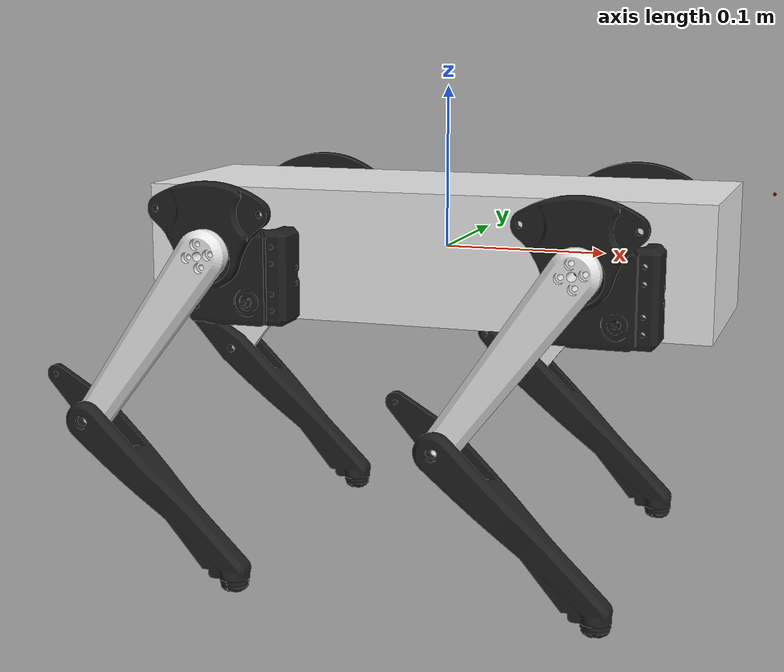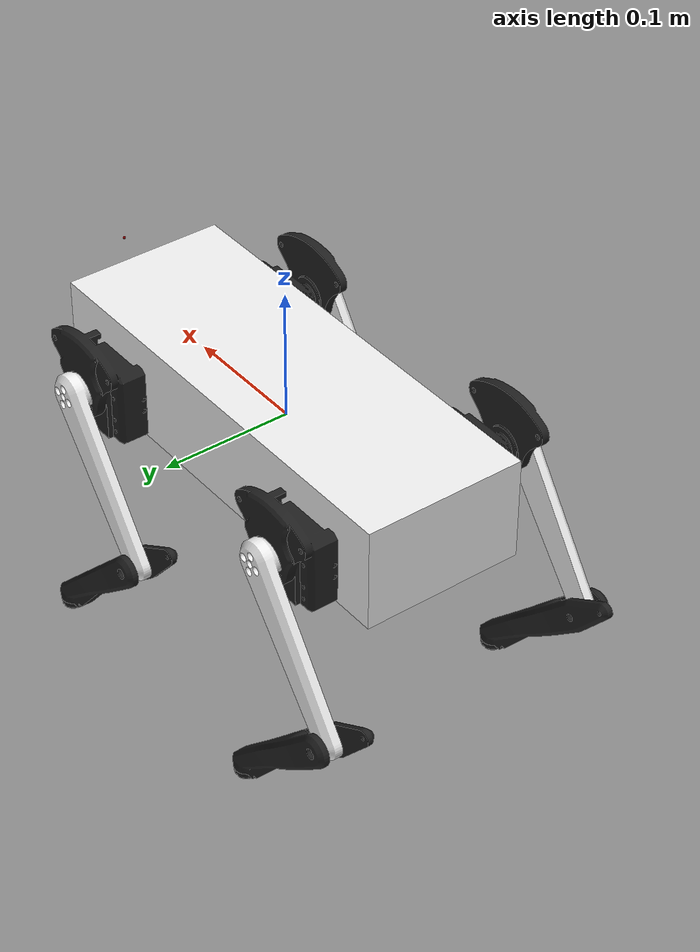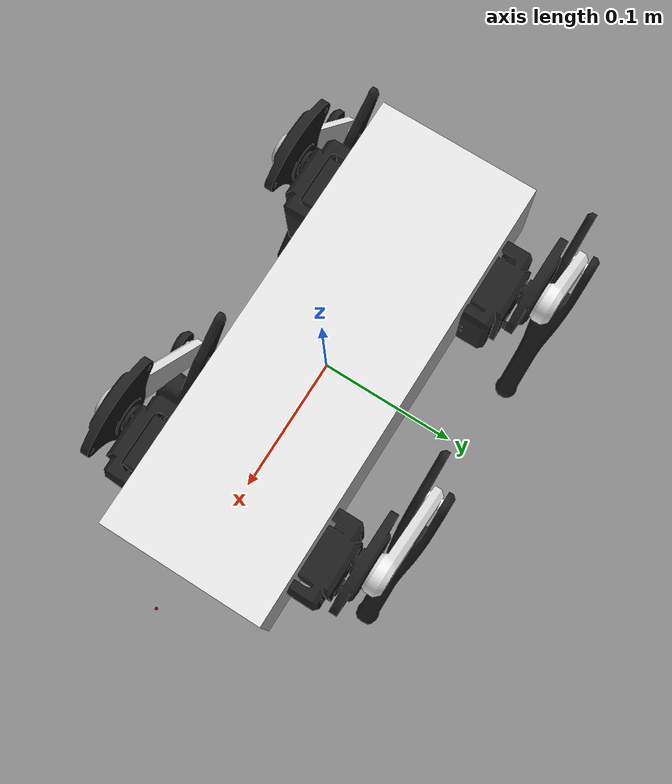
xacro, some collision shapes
<?xml version="1.0"?>

<robot name="jax" xmlns:xacro="http://www.ros.org/wiki/xacro">

  <xacro:arg name="DEBUG" default="false"/>
  <xacro:arg name="robot_controllers" default="$(find jax_locomotion)/config/ros_control/ros_control.yaml"/>

  <xacro:include filename="$(find jax_description)/urdf/const.xacro"/>
  <xacro:include filename="$(find jax_description)/urdf/materials.xacro"/>
  <xacro:include filename="$(find jax_description)/urdf/leg.xacro"/>
  <xacro:include filename="$(find jax_description)/urdf/jax_gazebo.xacro"/>

  <xacro:jax_gazebo robot_controllers="$(arg robot_controllers)"/>

  <xacro:if value="$(arg DEBUG)">
    <link name="world"/>
    <joint name="base_static_joint" type="fixed">
      <origin xyz="0 0 0" rpy="0 0 0"/>
      <parent link="world"/>
      <child link="base_link"/>
    </joint>
  </xacro:if>

  <link name="base_link">
    <visual>
      <origin xyz="0 0 0" rpy="0 0 0"/>
      <geometry>
        <box size="0.001 0.001 0.001"/>
      </geometry>
        <material name="white"/>
    </visual>
  </link>

  <joint name="floating_base" type="fixed">
    <origin xyz="0 0 0" rpy="0 0 0"/>
    <parent link="base_link"/>
    <child link="trunk"/>
  </joint>

  <link name="trunk">
    <visual>
      <origin xyz="0 0 -0.02" rpy="0 0 0"/>
      <geometry>
        <mesh filename="file://$(find jax_description)/meshes/base_link.stl"
              scale="0.001 0.001 0.001"/>
      </geometry>
        <material name="white"/>
    </visual>

    <collision>
      <origin xyz="0 0 0" rpy="0 0 0"/>
      <geometry>
        <box size="${trunk_length} ${trunk_width} ${trunk_height}"/>
      </geometry>
    </collision>

    <inertial>
      <origin xyz="${trunk_com_x} ${trunk_com_y} ${trunk_com_z}" rpy="0 0 0"/>
      <mass value="${trunk_mass}"/>
      <inertia
        ixx="${trunk_ixx}" ixy="${trunk_ixy}" ixz="${trunk_ixz}"
        iyy="${trunk_iyy}" iyz="${trunk_iyz}" izz="${trunk_izz}"/>
    </inertial>
  </link>

  <joint name="imu_joint" type="fixed">
    <parent link="trunk"/>
    <child link="imu_link"/>
    <origin xyz="0 0 0" rpy="0 0 0"/>
  </joint>

  <link name="imu_link">
    <inertial>
      <mass value="0.001"/>
      <origin xyz="0 0 0" rpy="0 0 0"/>
      <inertia ixx="0.0001" ixy="0" ixz="0" iyy="0.0001" iyz="0" izz="0.0001"/>
    </inertial>
    <visual>
      <origin xyz="0 0 0" rpy="0 0 0"/>
      <geometry>
        <box size="0.001 0.001 0.001"/>
      </geometry>
    </visual>
    <collision>
      <origin xyz="0 0 0" rpy="0 0 0"/>
      <geometry>
        <box size="0.001 0.001 0.001"/>
      </geometry>
    </collision>
  </link>

  <joint name="camera_joint" type="fixed">
    <parent link="trunk"/>
    <child link="camera_link"/>
    <origin xyz="0.20 0 0.04" rpy="0 0 0"/>
  </joint>

  <link name="camera_link">
    <inertial>
      <mass value="0.001"/>
      <origin xyz="0 0 0" rpy="0 0 0"/>
      <inertia ixx="0.0001" ixy="0" ixz="0" iyy="0.0001" iyz="0" izz="0.0001"/>
    </inertial>
    <visual>
      <origin xyz="0 0 0" rpy="0 0 0"/>
      <geometry>
        <sphere radius="0.001"/>
      </geometry>
      <material name="">
        <color rgba="0.5 0 0 1"/>
      </material>
    </visual>
    <collision>
      <origin xyz="0 0 0" rpy="0 0 0"/>
      <geometry>
        <sphere radius="0.001"/>
      </geometry>
    </collision>
  </link>

  <xacro:leg
    name="rf"
    hip_x="0.081158" hip_y="-0.062315" hip_z="-0.01"
    hip_axis_x="1.0"
    upper_x="0.023000" upper_y="-0.035846" upper_z="0.014509"
    lower_x="-0.076540" lower_y="-0.019724" lower_z="-0.105075"
    foot_x="0.094000" foot_y="0.006979" foot_z="-0.093222"
    hip_mesh="rf_hip.stl"
    upper_mesh="rf_upper_leg.stl"
    lower_mesh="rf_lower_leg.stl"
    foot_mesh="rf_foot.stl"
    hip_vis_x="-0.081158" hip_vis_y="0.062315" hip_vis_z="-0.01"
    upper_vis_x="-0.104158" upper_vis_y="0.098161" upper_vis_z="-0.022392"
    lower_vis_x="-0.027618" lower_vis_y="0.117885" lower_vis_z="0.082683"
    foot_vis_x="-0.121618" foot_vis_y="0.110906" foot_vis_z="0.175905"

    hip_mass="${fr_hip_mass}"
    hip_com_x="${fr_hip_com_x}" hip_com_y="${fr_hip_com_y}" hip_com_z="${fr_hip_com_z}"
    hip_ixx="${fr_hip_ixx}" hip_ixy="${fr_hip_ixy}" hip_ixz="${fr_hip_ixz}"
    hip_iyy="${fr_hip_iyy}" hip_iyz="${fr_hip_iyz}" hip_izz="${fr_hip_izz}"

    upper_mass="${fr_upper_mass}"
    upper_com_x="${fr_upper_com_x}" upper_com_y="${fr_upper_com_y}" upper_com_z="${fr_upper_com_z}"
    upper_ixx="${fr_upper_ixx}" upper_ixy="${fr_upper_ixy}" upper_ixz="${fr_upper_ixz}"
    upper_iyy="${fr_upper_iyy}" upper_iyz="${fr_upper_iyz}" upper_izz="${fr_upper_izz}"

    lower_mass="${fr_lower_mass}"
    lower_com_x="${fr_lower_com_x}" lower_com_y="${fr_lower_com_y}" lower_com_z="${fr_lower_com_z}"
    lower_ixx="${fr_lower_ixx}" lower_ixy="${fr_lower_ixy}" lower_ixz="${fr_lower_ixz}"
    lower_iyy="${fr_lower_iyy}" lower_iyz="${fr_lower_iyz}" lower_izz="${fr_lower_izz}"

    foot_mass="${fr_foot_mass}"
    foot_com_x="${fr_foot_com_x}" foot_com_y="${fr_foot_com_y}" foot_com_z="${fr_foot_com_z}"
    foot_ixx="${fr_foot_ixx}" foot_ixy="${fr_foot_ixy}" foot_ixz="${fr_foot_ixz}"
    foot_iyy="${fr_foot_iyy}" foot_iyz="${fr_foot_iyz}" foot_izz="${fr_foot_izz}"/>

  <xacro:leg
    name="lf"
    hip_x="0.081158" hip_y="0.062315" hip_z="-0.01"
    hip_axis_x="1.0"
    upper_x="0.023000" upper_y="0.035846" upper_z="0.014509"
    lower_x="-0.076540" lower_y="0.019724" lower_z="-0.105075"
    foot_x="0.094000" foot_y="-0.006979" foot_z="-0.093222"
    hip_mesh="lf_hip.stl"
    upper_mesh="lf_upper_leg.stl"
    lower_mesh="lf_lower_leg.stl"
    foot_mesh="lf_foot.stl"
    hip_vis_x="-0.081158" hip_vis_y="-0.062315" hip_vis_z="-0.01"
    upper_vis_x="-0.104058" upper_vis_y="-0.095538" upper_vis_z="-0.022148"
    lower_vis_x="-0.027518" lower_vis_y="-0.115214" lower_vis_z="0.082936"
    foot_vis_x="-0.121518" foot_vis_y="-0.108193" foot_vis_z="0.176155"

    hip_mass="${fl_hip_mass}"
    hip_com_x="${fl_hip_com_x}" hip_com_y="${fl_hip_com_y}" hip_com_z="${fl_hip_com_z}"
    hip_ixx="${fl_hip_ixx}" hip_ixy="${fl_hip_ixy}" hip_ixz="${fl_hip_ixz}"
    hip_iyy="${fl_hip_iyy}" hip_iyz="${fl_hip_iyz}" hip_izz="${fl_hip_izz}"

    upper_mass="${fl_upper_mass}"
    upper_com_x="${fl_upper_com_x}" upper_com_y="${fl_upper_com_y}" upper_com_z="${fl_upper_com_z}"
    upper_ixx="${fl_upper_ixx}" upper_ixy="${fl_upper_ixy}" upper_ixz="${fl_upper_ixz}"
    upper_iyy="${fl_upper_iyy}" upper_iyz="${fl_upper_iyz}" upper_izz="${fl_upper_izz}"

    lower_mass="${fl_lower_mass}"
    lower_com_x="${fl_lower_com_x}" lower_com_y="${fl_lower_com_y}" lower_com_z="${fl_lower_com_z}"
    lower_ixx="${fl_lower_ixx}" lower_ixy="${fl_lower_ixy}" lower_ixz="${fl_lower_ixz}"
    lower_iyy="${fl_lower_iyy}" lower_iyz="${fl_lower_iyz}" lower_izz="${fl_lower_izz}"

    foot_mass="${fl_foot_mass}"
    foot_com_x="${fl_foot_com_x}" foot_com_y="${fl_foot_com_y}" foot_com_z="${fl_foot_com_z}"
    foot_ixx="${fl_foot_ixx}" foot_ixy="${fl_foot_ixy}" foot_ixz="${fl_foot_ixz}"
    foot_iyy="${fl_foot_iyy}" foot_iyz="${fl_foot_iyz}" foot_izz="${fl_foot_izz}"/>

  <xacro:leg
    name="rh"
    hip_x="-0.076142" hip_y="-0.062315" hip_z="-0.01"
    hip_axis_x="1.0"
    upper_x="-0.043000" upper_y="-0.035846" upper_z="0.014509"
    lower_x="-0.076540" lower_y="-0.019724" lower_z="-0.105075"
    foot_x="0.094000" foot_y="0.006979" foot_z="-0.093222"
    hip_mesh="rh_hip.stl"
    upper_mesh="rh_upper_leg.stl"
    lower_mesh="rh_lower_leg.stl"
    foot_mesh="rh_foot.stl"
    hip_vis_x="0.076142" hip_vis_y="0.062315" hip_vis_z="-0.01"
    upper_vis_x="0.119142" upper_vis_y="0.098162" upper_vis_z="-0.022387"
    lower_vis_x="0.195682" lower_vis_y="0.117886" lower_vis_z="0.082688"
    foot_vis_x="0.101682" foot_vis_y="0.110907" foot_vis_z="0.175910"

    hip_mass="${rr_hip_mass}"
    hip_com_x="${rr_hip_com_x}" hip_com_y="${rr_hip_com_y}" hip_com_z="${rr_hip_com_z}"
    hip_ixx="${rr_hip_ixx}" hip_ixy="${rr_hip_ixy}" hip_ixz="${rr_hip_ixz}"
    hip_iyy="${rr_hip_iyy}" hip_iyz="${rr_hip_iyz}" hip_izz="${rr_hip_izz}"

    upper_mass="${rr_upper_mass}"
    upper_com_x="${rr_upper_com_x}" upper_com_y="${rr_upper_com_y}" upper_com_z="${rr_upper_com_z}"
    upper_ixx="${rr_upper_ixx}" upper_ixy="${rr_upper_ixy}" upper_ixz="${rr_upper_ixz}"
    upper_iyy="${rr_upper_iyy}" upper_iyz="${rr_upper_iyz}" upper_izz="${rr_upper_izz}"

    lower_mass="${rr_lower_mass}"
    lower_com_x="${rr_lower_com_x}" lower_com_y="${rr_lower_com_y}" lower_com_z="${rr_lower_com_z}"
    lower_ixx="${rr_lower_ixx}" lower_ixy="${rr_lower_ixy}" lower_ixz="${rr_lower_ixz}"
    lower_iyy="${rr_lower_iyy}" lower_iyz="${rr_lower_iyz}" lower_izz="${rr_lower_izz}"

    foot_mass="${rr_foot_mass}"
    foot_com_x="${rr_foot_com_x}" foot_com_y="${rr_foot_com_y}" foot_com_z="${rr_foot_com_z}"
    foot_ixx="${rr_foot_ixx}" foot_ixy="${rr_foot_ixy}" foot_ixz="${rr_foot_ixz}"
    foot_iyy="${rr_foot_iyy}" foot_iyz="${rr_foot_iyz}" foot_izz="${rr_foot_izz}"/>

  <xacro:leg
    name="lh"
    hip_x="-0.076142" hip_y="0.062315" hip_z="-0.01"
    hip_axis_x="1.0"
    upper_x="-0.043000" upper_y="0.035846" upper_z="0.014509"
    lower_x="-0.076540" lower_y="0.019724" lower_z="-0.105075"
    foot_x="0.094000" foot_y="-0.006979" foot_z="-0.093222"
    hip_mesh="lh_hip.stl"
    upper_mesh="lh_upper_leg.stl"
    lower_mesh="lh_lower_leg.stl"
    foot_mesh="lh_foot.stl"
    hip_vis_x="0.076142" hip_vis_y="-0.062315" hip_vis_z="-0.01"
    upper_vis_x="0.119242" upper_vis_y="-0.095538" upper_vis_z="-0.022143"
    lower_vis_x="0.195782" lower_vis_y="-0.115214" lower_vis_z="0.082940"
    foot_vis_x="0.101782" foot_vis_y="-0.108193" foot_vis_z="0.176159"

    hip_mass="${rl_hip_mass}"
    hip_com_x="${rl_hip_com_x}" hip_com_y="${rl_hip_com_y}" hip_com_z="${rl_hip_com_z}"
    hip_ixx="${rl_hip_ixx}" hip_ixy="${rl_hip_ixy}" hip_ixz="${rl_hip_ixz}"
    hip_iyy="${rl_hip_iyy}" hip_iyz="${rl_hip_iyz}" hip_izz="${rl_hip_izz}"

    upper_mass="${rl_upper_mass}"
    upper_com_x="${rl_upper_com_x}" upper_com_y="${rl_upper_com_y}" upper_com_z="${rl_upper_com_z}"
    upper_ixx="${rl_upper_ixx}" upper_ixy="${rl_upper_ixy}" upper_ixz="${rl_upper_ixz}"
    upper_iyy="${rl_upper_iyy}" upper_iyz="${rl_upper_iyz}" upper_izz="${rl_upper_izz}"

    lower_mass="${rl_lower_mass}"
    lower_com_x="${rl_lower_com_x}" lower_com_y="${rl_lower_com_y}" lower_com_z="${rl_lower_com_z}"
    lower_ixx="${rl_lower_ixx}" lower_ixy="${rl_lower_ixy}" lower_ixz="${rl_lower_ixz}"
    lower_iyy="${rl_lower_iyy}" lower_iyz="${rl_lower_iyz}" lower_izz="${rl_lower_izz}"

    foot_mass="${rl_foot_mass}"
    foot_com_x="${rl_foot_com_x}" foot_com_y="${rl_foot_com_y}" foot_com_z="${rl_foot_com_z}"
    foot_ixx="${rl_foot_ixx}" foot_ixy="${rl_foot_ixy}" foot_ixz="${rl_foot_ixz}"
    foot_iyy="${rl_foot_iyy}" foot_iyz="${rl_foot_iyz}" foot_izz="${rl_foot_izz}"/>

      <ros2_control name="GazeboSimSystem" type="system">
    <hardware>
      <plugin>gz_ros2_control/GazeboSimSystem</plugin>
    </hardware>

    <joint name="lf_hip_joint">
      <command_interface name="effort"/>
      <state_interface name="position"/>
      <state_interface name="velocity"/>
    </joint>
    <joint name="lf_upper_leg_joint">
      <command_interface name="effort"/>
      <state_interface name="position"/>
      <state_interface name="velocity"/>
    </joint>
    <joint name="lf_lower_leg_joint">
      <command_interface name="effort"/>
      <state_interface name="position"/>
      <state_interface name="velocity"/>
    </joint>

    <joint name="rf_hip_joint">
      <command_interface name="effort"/>
      <state_interface name="position"/>
      <state_interface name="velocity"/>
    </joint>
    <joint name="rf_upper_leg_joint">
      <command_interface name="effort"/>
      <state_interface name="position"/>
      <state_interface name="velocity"/>
    </joint>
    <joint name="rf_lower_leg_joint">
      <command_interface name="effort"/>
      <state_interface name="position"/>
      <state_interface name="velocity"/>
    </joint>

    <joint name="lh_hip_joint">
      <command_interface name="effort"/>
      <state_interface name="position"/>
      <state_interface name="velocity"/>
    </joint>
    <joint name="lh_upper_leg_joint">
      <command_interface name="effort"/>
      <state_interface name="position"/>
      <state_interface name="velocity"/>
    </joint>
    <joint name="lh_lower_leg_joint">
      <command_interface name="effort"/>
      <state_interface name="position"/>
      <state_interface name="velocity"/>
    </joint>

    <joint name="rh_hip_joint">
      <command_interface name="effort"/>
      <state_interface name="position"/>
      <state_interface name="velocity"/>
    </joint>
    <joint name="rh_upper_leg_joint">
      <command_interface name="effort"/>
      <state_interface name="position"/>
      <state_interface name="velocity"/>
    </joint>
    <joint name="rh_lower_leg_joint">
      <command_interface name="effort"/>
      <state_interface name="position"/>
      <state_interface name="velocity"/>
    </joint>
  </ros2_control>

</robot>

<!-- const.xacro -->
<robot xmlns:xacro="http://www.ros.org/wiki/xacro">

  <xacro:property name="PI" value="3.1415926535897931"/>
  <xacro:property name="stick_mass" value="0.00001"/>

  <xacro:property name="trunk_length" value="0.350"/>
  <xacro:property name="trunk_width"  value="0.125"/>
  <xacro:property name="trunk_height" value="0.080"/>

  <xacro:property name="hip_radius" value="0.020"/>
  <xacro:property name="hip_length" value="0.040"/>

  <xacro:property name="thigh_shoulder_radius" value="0.020"/>
  <xacro:property name="thigh_shoulder_length" value="0.030"/>
  <xacro:property name="thigh_width" value="0.030"/>
  <xacro:property name="thigh_height" value="0.030"/>

  <xacro:property name="calf_width" value="0.020"/>
  <xacro:property name="calf_height" value="0.020"/>

  <xacro:property name="foot_radius" value="0.015"/>
  <xacro:property name="foot_radius_visual" value="0.015"/>

  <xacro:property name="stick_radius" value="0.01"/>
  <xacro:property name="stick_length" value="0.2"/>

  <xacro:property name="thigh_offset" value="0.090"/>
  <xacro:property name="thigh_length" value="0.130"/>
  <xacro:property name="calf_length" value="0.120"/>

  <xacro:property name="leg_offset_x" value="0.081158"/>
  <xacro:property name="leg_offset_y" value="0.062315"/>
  <xacro:property name="hip_offset" value="0.062315"/>

  <xacro:property name="hip_offset_x" value="0.081158"/>
  <xacro:property name="hip_offset_y" value="0.062315"/>
  <xacro:property name="hip_offset_z" value="0.007883"/>

  <xacro:property name="thigh_offset_x" value="0.0230"/>
  <xacro:property name="thigh_offset_y" value="0.0358"/>
  <xacro:property name="thigh_offset_z" value="0.0145"/>

  <xacro:property name="calf_offset_x" value="-0.07654"/>
  <xacro:property name="calf_offset_y" value="0.0197"/>
  <xacro:property name="calf_offset_z" value="-0.10508"/>

  <xacro:property name="damping" value="0.01"/>
  <xacro:property name="friction" value="0.2"/>

  <xacro:property name="hip_position_max" value="0.523599"/>
  <xacro:property name="hip_position_min" value="-0.523599"/>
  <xacro:property name="hip_velocity_max" value="30.1"/>
  <xacro:property name="hip_torque_max" value="23.7"/>

  <xacro:property name="thigh_position_max" value="1.3"/>
  <xacro:property name="thigh_position_min" value="-1.3"/>
  <xacro:property name="thigh_velocity_max" value="30.1"/>
  <xacro:property name="thigh_torque_max" value="23.7"/>

  <xacro:property name="calf_position_max" value="0.85"/>
  <xacro:property name="calf_position_min" value="-1.3"/>
  <xacro:property name="calf_velocity_max" value="30.1"/>
  <xacro:property name="calf_torque_max" value="35.55"/>

  <xacro:property name="trunk_mass" value="1.910514204386361"/>
  <xacro:property name="trunk_com_x" value="0.008678015263833357"/>
  <xacro:property name="trunk_com_y" value="-0.0015738599362344102"/>
  <xacro:property name="trunk_com_z" value="0.011486056558711955"/>
  <xacro:property name="trunk_ixx" value="0.005085"/>
  <xacro:property name="trunk_ixy" value="-0.000103"/>
  <xacro:property name="trunk_ixz" value="0.000067"/>
  <xacro:property name="trunk_iyy" value="0.019435"/>
  <xacro:property name="trunk_iyz" value="-0.000016"/>
  <xacro:property name="trunk_izz" value="0.021904"/>

    <!-- =========================
       Jax per-leg inertials
       rf <- fr
       lf <- fl
       rh <- rr
       lh <- rl
       ========================= -->

  <!-- FR -->
  <xacro:property name="fr_hip_mass" value="0.1850145905066107"/>
  <xacro:property name="fr_hip_com_x" value="0.031685771474718016"/>
  <xacro:property name="fr_hip_com_y" value="-0.011868298857149275"/>
  <xacro:property name="fr_hip_com_z" value="0.004594145391547214"/>
  <xacro:property name="fr_hip_ixx" value="0.000113"/>
  <xacro:property name="fr_hip_ixy" value="-6e-06"/>
  <xacro:property name="fr_hip_ixz" value="7e-06"/>
  <xacro:property name="fr_hip_iyy" value="0.000122"/>
  <xacro:property name="fr_hip_iyz" value="2.1e-05"/>
  <xacro:property name="fr_hip_izz" value="9.2e-05"/>

  <xacro:property name="fr_upper_mass" value="0.045857743614585944"/>
  <xacro:property name="fr_upper_com_x" value="-0.03478139033068922"/>
  <xacro:property name="fr_upper_com_y" value="-0.01192766889551912"/>
  <xacro:property name="fr_upper_com_z" value="-0.04774730459921904"/>
  <xacro:property name="fr_upper_ixx" value="6.7e-05"/>
  <xacro:property name="fr_upper_ixy" value="-1e-06"/>
  <xacro:property name="fr_upper_ixz" value="-4.7e-05"/>
  <xacro:property name="fr_upper_iyy" value="0.000102"/>
  <xacro:property name="fr_upper_iyz" value="-2e-06"/>
  <xacro:property name="fr_upper_izz" value="3.7e-05"/>

  <xacro:property name="fr_lower_mass" value="0.05451524909957762"/>
  <xacro:property name="fr_lower_com_x" value="0.0386466004168213"/>
  <xacro:property name="fr_lower_com_y" value="0.007680714977197356"/>
  <xacro:property name="fr_lower_com_z" value="-0.035714252976537214"/>
  <xacro:property name="fr_lower_ixx" value="4.9e-05"/>
  <xacro:property name="fr_lower_ixy" value="2e-06"/>
  <xacro:property name="fr_lower_ixz" value="4.8e-05"/>
  <xacro:property name="fr_lower_iyy" value="9.9e-05"/>
  <xacro:property name="fr_lower_iyz" value="-2e-06"/>
  <xacro:property name="fr_lower_izz" value="5.7e-05"/>

  <xacro:property name="fr_foot_mass" value="0.0015544021039306983"/>
  <xacro:property name="fr_foot_com_x" value="3.133761160845072e-07"/>
  <xacro:property name="fr_foot_com_y" value="-1.1298517275520892e-06"/>
  <xacro:property name="fr_foot_com_z" value="-0.0031871849290120158"/>
  <xacro:property name="fr_foot_ixx" value="1e-6"/>
  <xacro:property name="fr_foot_ixy" value="0.0"/>
  <xacro:property name="fr_foot_ixz" value="0.0"/>
  <xacro:property name="fr_foot_iyy" value="1e-6"/>
  <xacro:property name="fr_foot_iyz" value="0.0"/>
  <xacro:property name="fr_foot_izz" value="1e-6"/>

  <!-- FL -->
  <xacro:property name="fl_hip_mass" value="0.18489020223068098"/>
  <xacro:property name="fl_hip_com_x" value="0.03167224526916118"/>
  <xacro:property name="fl_hip_com_y" value="0.01249139139998938"/>
  <xacro:property name="fl_hip_com_z" value="0.004551528171088594"/>
  <xacro:property name="fl_hip_ixx" value="0.000112"/>
  <xacro:property name="fl_hip_ixy" value="6e-06"/>
  <xacro:property name="fl_hip_ixz" value="7e-06"/>
  <xacro:property name="fl_hip_iyy" value="0.000122"/>
  <xacro:property name="fl_hip_iyz" value="-1.9e-05"/>
  <xacro:property name="fl_hip_izz" value="9.1e-05"/>

  <xacro:property name="fl_upper_mass" value="0.045857743614585944"/>
  <xacro:property name="fl_upper_com_x" value="-0.03478138613659229"/>
  <xacro:property name="fl_upper_com_y" value="0.011905876652642117"/>
  <xacro:property name="fl_upper_com_z" value="-0.04775291580020842"/>
  <xacro:property name="fl_upper_ixx" value="6.7e-05"/>
  <xacro:property name="fl_upper_ixy" value="1e-06"/>
  <xacro:property name="fl_upper_ixz" value="-4.7e-05"/>
  <xacro:property name="fl_upper_iyy" value="0.000102"/>
  <xacro:property name="fl_upper_iyz" value="2e-06"/>
  <xacro:property name="fl_upper_izz" value="3.7e-05"/>

  <xacro:property name="fl_lower_mass" value="0.054515249049161794"/>
  <xacro:property name="fl_lower_com_x" value="0.03864660471857666"/>
  <xacro:property name="fl_lower_com_y" value="-0.007696728327690944"/>
  <xacro:property name="fl_lower_com_z" value="-0.03571090714686345"/>
  <xacro:property name="fl_lower_ixx" value="4.9e-05"/>
  <xacro:property name="fl_lower_ixy" value="-2e-06"/>
  <xacro:property name="fl_lower_ixz" value="4.8e-05"/>
  <xacro:property name="fl_lower_iyy" value="9.9e-05"/>
  <xacro:property name="fl_lower_iyz" value="2e-06"/>
  <xacro:property name="fl_lower_izz" value="5.7e-05"/>

  <xacro:property name="fl_foot_mass" value="0.0015543987561829709"/>
  <xacro:property name="fl_foot_com_x" value="3.008869395859648e-07"/>
  <xacro:property name="fl_foot_com_y" value="-4.266570403088643e-07"/>
  <xacro:property name="fl_foot_com_z" value="-0.003187138047566207"/>
  <xacro:property name="fl_foot_ixx" value="1e-6"/>
  <xacro:property name="fl_foot_ixy" value="0.0"/>
  <xacro:property name="fl_foot_ixz" value="0.0"/>
  <xacro:property name="fl_foot_iyy" value="1e-6"/>
  <xacro:property name="fl_foot_iyz" value="0.0"/>
  <xacro:property name="fl_foot_izz" value="1e-6"/>

  <!-- RR -->
  <xacro:property name="rr_hip_mass" value="0.18501459050661068"/>
  <xacro:property name="rr_hip_com_x" value="-0.03431422835590116"/>
  <xacro:property name="rr_hip_com_y" value="-0.011868552507264672"/>
  <xacro:property name="rr_hip_com_z" value="0.0045922161330045706"/>
  <xacro:property name="rr_hip_ixx" value="0.000113"/>
  <xacro:property name="rr_hip_ixy" value="-6e-06"/>
  <xacro:property name="rr_hip_ixz" value="7e-06"/>
  <xacro:property name="rr_hip_iyy" value="0.000122"/>
  <xacro:property name="rr_hip_iyz" value="2.1e-05"/>
  <xacro:property name="rr_hip_izz" value="9.2e-05"/>

  <xacro:property name="rr_upper_mass" value="0.04585774361458584"/>
  <xacro:property name="rr_upper_com_x" value="-0.03478139027503063"/>
  <xacro:property name="rr_upper_com_y" value="-0.011926922545635349"/>
  <xacro:property name="rr_upper_com_z" value="-0.04774723385776375"/>
  <xacro:property name="rr_upper_ixx" value="6.7e-05"/>
  <xacro:property name="rr_upper_ixy" value="-1e-06"/>
  <xacro:property name="rr_upper_ixz" value="-4.7e-05"/>
  <xacro:property name="rr_upper_iyy" value="0.000102"/>
  <xacro:property name="rr_upper_iyz" value="-2e-06"/>
  <xacro:property name="rr_upper_izz" value="3.7e-05"/>

  <xacro:property name="rr_lower_mass" value="0.05451524909957757"/>
  <xacro:property name="rr_lower_com_x" value="0.03864661335520639"/>
  <xacro:property name="rr_lower_com_y" value="0.007681461342547449"/>
  <xacro:property name="rr_lower_com_z" value="-0.03571418226859095"/>
  <xacro:property name="rr_lower_ixx" value="4.9e-05"/>
  <xacro:property name="rr_lower_ixy" value="2e-06"/>
  <xacro:property name="rr_lower_ixz" value="4.8e-05"/>
  <xacro:property name="rr_lower_iyy" value="9.9e-05"/>
  <xacro:property name="rr_lower_iyz" value="-2e-06"/>
  <xacro:property name="rr_lower_izz" value="5.7e-05"/>

  <xacro:property name="rr_foot_mass" value="0.0015544021039307048"/>
  <xacro:property name="rr_foot_com_x" value="3.128716410116805e-07"/>
  <xacro:property name="rr_foot_com_y" value="-3.852716011221169e-07"/>
  <xacro:property name="rr_foot_com_z" value="-0.0031871141871678"/>
  <xacro:property name="rr_foot_ixx" value="1e-6"/>
  <xacro:property name="rr_foot_ixy" value="0.0"/>
  <xacro:property name="rr_foot_ixz" value="0.0"/>
  <xacro:property name="rr_foot_iyy" value="1e-6"/>
  <xacro:property name="rr_foot_iyz" value="0.0"/>
  <xacro:property name="rr_foot_izz" value="1e-6"/>

  <!-- RL -->
  <xacro:property name="rl_hip_mass" value="0.18489020223068078"/>
  <xacro:property name="rl_hip_com_x" value="-0.034327754789058126"/>
  <xacro:property name="rl_hip_com_y" value="0.011877125658724438"/>
  <xacro:property name="rl_hip_com_z" value="0.004550243290882217"/>
  <xacro:property name="rl_hip_ixx" value="0.000113"/>
  <xacro:property name="rl_hip_ixy" value="6e-06"/>
  <xacro:property name="rl_hip_ixz" value="7e-06"/>
  <xacro:property name="rl_hip_iyy" value="0.000122"/>
  <xacro:property name="rl_hip_iyz" value="-2.1e-05"/>
  <xacro:property name="rl_hip_izz" value="9.2e-05"/>

  <xacro:property name="rl_upper_mass" value="0.04585774361458583"/>
  <xacro:property name="rl_upper_com_x" value="-0.03478138609151464"/>
  <xacro:property name="rl_upper_com_y" value="0.011905623117125605"/>
  <xacro:property name="rl_upper_com_z" value="-0.04775233999536463"/>
  <xacro:property name="rl_upper_ixx" value="6.7e-05"/>
  <xacro:property name="rl_upper_ixy" value="1e-06"/>
  <xacro:property name="rl_upper_ixz" value="-4.7e-05"/>
  <xacro:property name="rl_upper_iyy" value="0.000102"/>
  <xacro:property name="rl_upper_iyz" value="2e-06"/>
  <xacro:property name="rl_upper_izz" value="3.7e-05"/>

  <xacro:property name="rl_lower_mass" value="0.05451524904916167"/>
  <xacro:property name="rl_lower_com_x" value="0.03864661766192473"/>
  <xacro:property name="rl_lower_com_y" value="-0.007696981878707848"/>
  <xacro:property name="rl_lower_com_z" value="-0.03571133137556187"/>
  <xacro:property name="rl_lower_ixx" value="4.9e-05"/>
  <xacro:property name="rl_lower_ixy" value="-2e-06"/>
  <xacro:property name="rl_lower_ixz" value="4.8e-05"/>
  <xacro:property name="rl_lower_iyy" value="9.9e-05"/>
  <xacro:property name="rl_lower_iyz" value="2e-06"/>
  <xacro:property name="rl_lower_izz" value="5.7e-05"/>

  <xacro:property name="rl_foot_mass" value="0.0015543987561829672"/>
  <xacro:property name="rl_foot_com_x" value="3.005685090956556e-07"/>
  <xacro:property name="rl_foot_com_y" value="-6.804432348961331e-07"/>
  <xacro:property name="rl_foot_com_z" value="-0.0031875622426739136"/>
  <xacro:property name="rl_foot_ixx" value="1e-6"/>
  <xacro:property name="rl_foot_ixy" value="0.0"/>
  <xacro:property name="rl_foot_ixz" value="0.0"/>
  <xacro:property name="rl_foot_iyy" value="1e-6"/>
  <xacro:property name="rl_foot_iyz" value="0.0"/>
  <xacro:property name="rl_foot_izz" value="1e-6"/>

  <xacro:property name="hip_collision_x" value="0.040"/>
  <xacro:property name="hip_collision_y" value="0.030"/>
  <xacro:property name="hip_collision_z" value="0.030"/>

  <xacro:property name="upper_col_x" value="0.000"/>
  <xacro:property name="upper_col_y" value="0.000"/>
  <xacro:property name="upper_col_z" value="-0.050"/>
  <xacro:property name="upper_collision_x" value="0.030"/>
  <xacro:property name="upper_collision_y" value="0.030"/>
  <xacro:property name="upper_collision_z" value="0.120"/>

  <xacro:property name="lower_col_x" value="0.000"/>
  <xacro:property name="lower_col_y" value="0.000"/>
  <xacro:property name="lower_col_z" value="-0.060"/>
  <xacro:property name="lower_collision_x" value="0.020"/>
  <xacro:property name="lower_collision_y" value="0.020"/>
  <xacro:property name="lower_collision_z" value="0.120"/>

</robot>

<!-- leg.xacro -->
<robot xmlns:xacro="http://www.ros.org/wiki/xacro">

  <xacro:macro name="leg" params="
    name
    hip_x hip_y hip_z
    hip_axis_x
    upper_x upper_y upper_z
    lower_x lower_y lower_z
    foot_x foot_y foot_z

    hip_mesh upper_mesh lower_mesh foot_mesh

    hip_vis_x hip_vis_y hip_vis_z
    upper_vis_x upper_vis_y upper_vis_z
    lower_vis_x lower_vis_y lower_vis_z
    foot_vis_x foot_vis_y foot_vis_z

       hip_mass hip_com_x hip_com_y hip_com_z hip_ixx hip_ixy hip_ixz hip_iyy hip_iyz hip_izz
    upper_mass upper_com_x upper_com_y upper_com_z upper_ixx upper_ixy upper_ixz upper_iyy upper_iyz upper_izz
    lower_mass lower_com_x lower_com_y lower_com_z lower_ixx lower_ixy lower_ixz lower_iyy lower_iyz lower_izz
    foot_mass foot_com_x foot_com_y foot_com_z foot_ixx foot_ixy foot_ixz foot_iyy foot_iyz foot_izz
  ">

    <joint name="${name}_hip_joint" type="revolute">
      <origin xyz="${hip_x} ${hip_y} ${hip_z}" rpy="0 0 0"/>
      <parent link="trunk"/>
      <child link="${name}_hip_link"/>
      <axis xyz="${hip_axis_x} 0 0"/>
      <dynamics damping="${damping}" friction="${friction}"/>
      <limit lower="${hip_position_min}" upper="${hip_position_max}"
             effort="${hip_torque_max}" velocity="${hip_velocity_max}"/>
    </joint>

    <link name="${name}_hip_link">
      <visual>
        <origin xyz="${hip_vis_x} ${hip_vis_y} ${hip_vis_z}" rpy="0 0 0"/>
        <geometry>
          <mesh filename="file://$(find jax_description)/meshes/${hip_mesh}"
                scale="0.001 0.001 0.001"/>
        </geometry>
        <material name="black"/>
      </visual>
      <collision>
        <origin xyz="0 0 0" rpy="0 1.5708 0"/>
        <geometry>
          <cylinder radius="0.020" length="0.040"/>
        </geometry>
      </collision>
      <inertial>
        <origin xyz="${hip_com_x} ${hip_com_y} ${hip_com_z}" rpy="0 0 0"/>
        <mass value="${hip_mass}"/>
        <inertia ixx="${hip_ixx}" ixy="${hip_ixy}" ixz="${hip_ixz}"
                 iyy="${hip_iyy}" iyz="${hip_iyz}" izz="${hip_izz}"/>
      </inertial>
    </link>

    <joint name="${name}_upper_leg_joint" type="revolute">
      <origin xyz="${upper_x} ${upper_y} ${upper_z}" rpy="0 0 0"/>
      <parent link="${name}_hip_link"/>
      <child link="${name}_upper_leg_link"/>
      <axis xyz="0 1 -0.000227"/>
      <dynamics damping="${damping}" friction="${friction}"/>
      <limit lower="${thigh_position_min}" upper="${thigh_position_max}"
             effort="${thigh_torque_max}" velocity="${thigh_velocity_max}"/>
    </joint>

    <link name="${name}_upper_leg_link">
      <visual>
        <origin xyz="${upper_vis_x} ${upper_vis_y} ${upper_vis_z}" rpy="0 0 0"/>
        <geometry>
          <mesh filename="file://$(find jax_description)/meshes/${upper_mesh}"
                scale="0.001 0.001 0.001"/>
        </geometry>
        <material name="white"/>
      </visual>
      <collision>
        <origin xyz="0 0 -0.050" rpy="0 0 0"/>
        <geometry>
          <cylinder radius="0.016" length="0.100"/>
        </geometry>
      </collision>
      <inertial>
        <origin xyz="${upper_com_x} ${upper_com_y} ${upper_com_z}" rpy="0 0 0"/>
        <mass value="${upper_mass}"/>
        <inertia ixx="${upper_ixx}" ixy="${upper_ixy}" ixz="${upper_ixz}"
                 iyy="${upper_iyy}" iyz="${upper_iyz}" izz="${upper_izz}"/>
      </inertial>
    </link>

    <joint name="${name}_lower_leg_joint" type="revolute">
      <origin xyz="${lower_x} ${lower_y} ${lower_z}" rpy="0 0 0"/>
      <parent link="${name}_upper_leg_link"/>
      <child link="${name}_lower_leg_link"/>
      <axis xyz="0 1 -0.000227"/>
      <dynamics damping="${damping}" friction="${friction}"/>
      <limit lower="${calf_position_min}" upper="${calf_position_max}"
             effort="${calf_torque_max}" velocity="${calf_velocity_max}"/>
    </joint>

    <link name="${name}_lower_leg_link">
      <visual>
        <origin xyz="${lower_vis_x} ${lower_vis_y} ${lower_vis_z}" rpy="0 0 0"/>
        <geometry>
          <mesh filename="file://$(find jax_description)/meshes/${lower_mesh}"
                scale="0.001 0.001 0.001"/>
        </geometry>
        <material name="black"/>
      </visual>
      <collision>
        <origin xyz="0.05 -0.010 -0.050" rpy="0 -0.73 0"/>
        <geometry>
          <cylinder radius="0.009" length="0.090"/>
        </geometry>
      </collision>
      <inertial>
        <origin xyz="${lower_com_x} ${lower_com_y} ${lower_com_z}" rpy="0 0 0"/>
        <mass value="${lower_mass}"/>
        <inertia ixx="${lower_ixx}" ixy="${lower_ixy}" ixz="${lower_ixz}"
                 iyy="${lower_iyy}" iyz="${lower_iyz}" izz="${lower_izz}"/>
      </inertial>
    </link>

    <joint name="${name}_foot_joint" type="fixed">
      <origin xyz="${foot_x} ${foot_y} ${foot_z}" rpy="0 0 0"/>
      <parent link="${name}_lower_leg_link"/>
      <child link="${name}_foot_link"/>
    </joint>

    <link name="${name}_foot_link">
      <visual>
        <origin xyz="${foot_vis_x} ${foot_vis_y} ${foot_vis_z}" rpy="0 0 0"/>
        <geometry>
          <mesh filename="file://$(find jax_description)/meshes/${foot_mesh}"
                scale="0.001 0.001 0.001"/>
        </geometry>
        <material name="black"/>
      </visual>
      <collision>
        <origin xyz="0 0 0" rpy="0 0 0"/>
        <geometry>
          <box size="0.040 0.025 0.015"/>
        </geometry>
      </collision>
      <inertial>
        <origin xyz="${foot_com_x} ${foot_com_y} ${foot_com_z}" rpy="0 0 0"/>
        <mass value="${foot_mass}"/>
        <inertia ixx="${foot_ixx}" ixy="${foot_ixy}" ixz="${foot_ixz}"
                 iyy="${foot_iyy}" iyz="${foot_iyz}" izz="${foot_izz}"/>
      </inertial>
    </link>

  </xacro:macro>
</robot>
